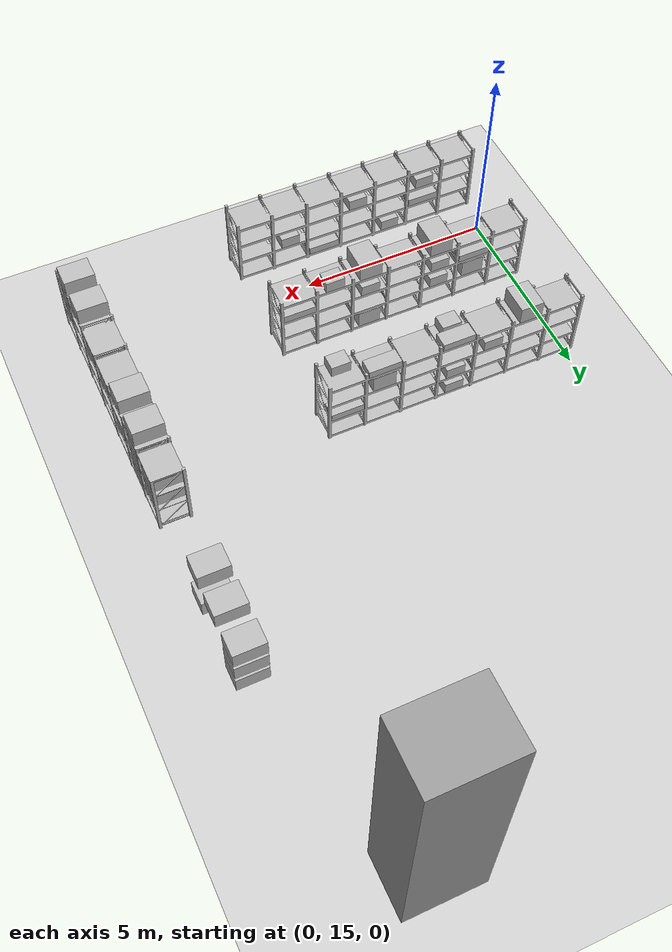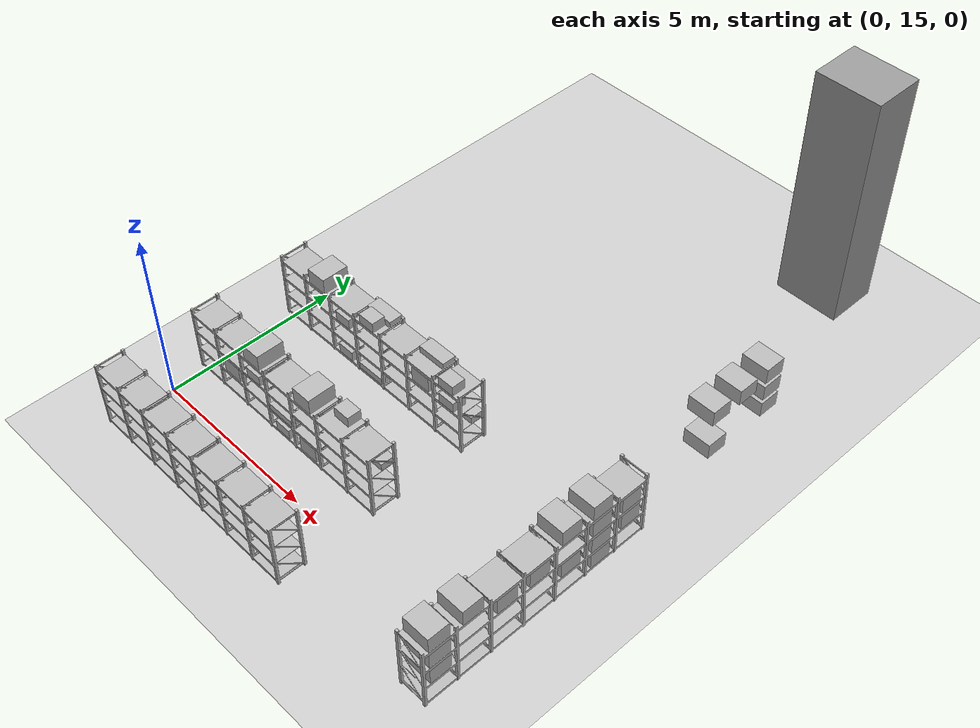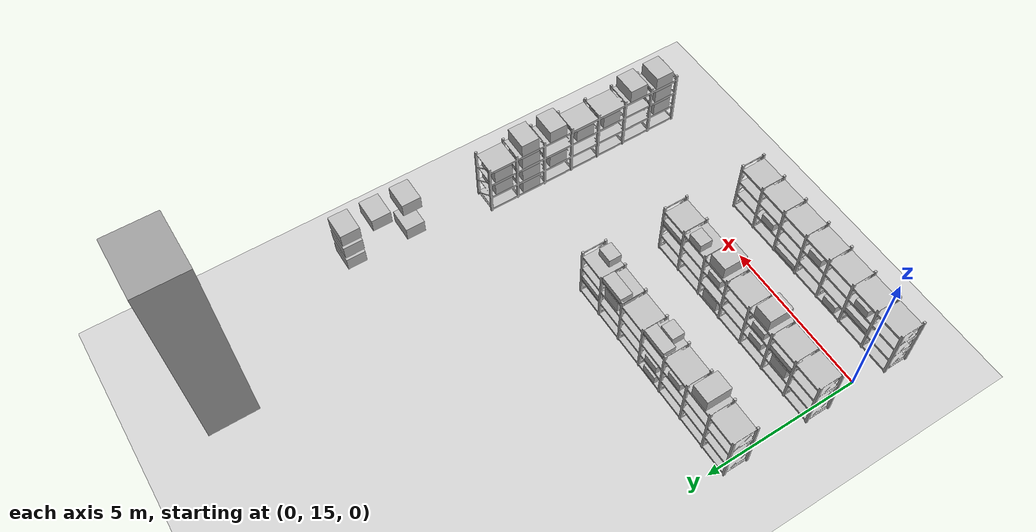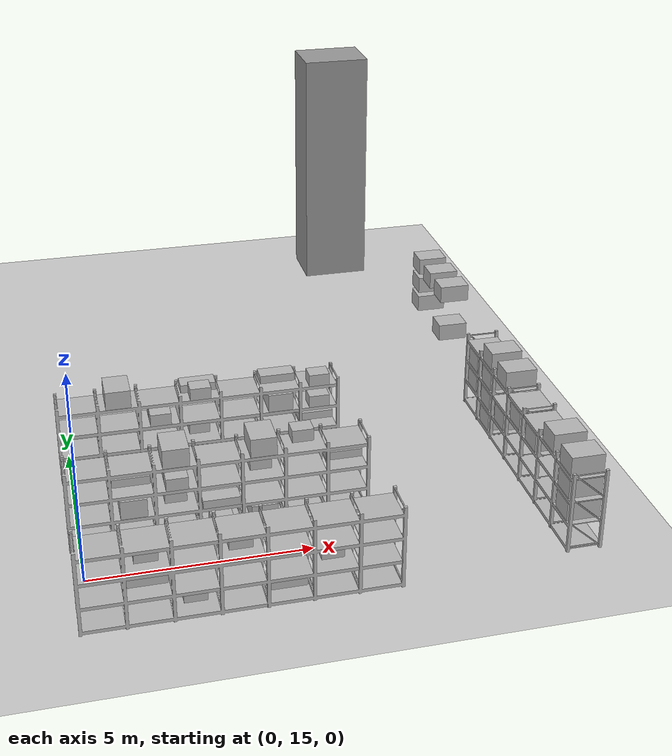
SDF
<sdf version="1.6">
 <world name="default">
  <model name="ground_plane">
   <static>1</static>
   <link name="link">
    <collision name="collision">
     <geometry><plane><normal>0 0 1</normal><size>100 100</size></plane></geometry>
     <surface><friction><ode><mu>100</mu><mu2>50</mu2></ode></friction></surface>
    </collision>
    <visual name="visual">
     <cast_shadows>0</cast_shadows>
     <geometry><plane><normal>0 0 1</normal><size>100 100</size></plane></geometry>
     <material>
      <script><uri>file://media/materials/scripts/gazebo.material</uri><name>Gazebo/Grey</name></script>
     </material>
    </visual>
   </link>
  </model>
  <model name="box_C_087">
   <pose>10.762 24.783 0.907 0 0 3.1416</pose>
   <link name="link">
    <inertial>
     <mass>8.0</mass>
     <inertia><ixx>0.37500</ixx><iyy>0.54060</iyy><izz>0.64560</izz><ixy>0</ixy><ixz>0</ixz><iyz>0</iyz></inertia>
    </inertial>
    <collision name="collision">
     <geometry><box><size>0.78 0.6 0.45</size></box></geometry>
     <surface><friction><ode><mu>1.0</mu><mu2>1.0</mu2></ode></friction></surface>
    </collision>
    <visual name="visual">
     <cast_shadows>0</cast_shadows>
     <geometry><box><size>0.78 0.6 0.45</size></box></geometry>
     <material>
      <script>
       <uri>model://labeled_boxes/materials/scripts</uri>
       <uri>model://labeled_boxes/materials/textures</uri>
       <name>LabeledBox/C-087</name>
      </script>
     </material>
    </visual>
   </link>
  </model>
  <model name="box_C_088">
   <pose>10.762 24.783 1.487 0 0 3.1416</pose>
   <link name="link">
    <inertial>
     <mass>8.0</mass>
     <inertia><ixx>0.37500</ixx><iyy>0.54060</iyy><izz>0.64560</izz><ixy>0</ixy><ixz>0</ixz><iyz>0</iyz></inertia>
    </inertial>
    <collision name="collision">
     <geometry><box><size>0.78 0.6 0.45</size></box></geometry>
     <surface><friction><ode><mu>1.0</mu><mu2>1.0</mu2></ode></friction></surface>
    </collision>
    <visual name="visual">
     <cast_shadows>0</cast_shadows>
     <geometry><box><size>0.78 0.6 0.45</size></box></geometry>
     <material>
      <script>
       <uri>model://labeled_boxes/materials/scripts</uri>
       <uri>model://labeled_boxes/materials/textures</uri>
       <name>LabeledBox/C-088</name>
      </script>
     </material>
    </visual>
   </link>
  </model>
  <model name="box_C_089">
   <pose>10.762 24.783 2.067 0 0 3.1416</pose>
   <link name="link">
    <inertial>
     <mass>8.0</mass>
     <inertia><ixx>0.37500</ixx><iyy>0.54060</iyy><izz>0.64560</izz><ixy>0</ixy><ixz>0</ixz><iyz>0</iyz></inertia>
    </inertial>
    <collision name="collision">
     <geometry><box><size>0.78 0.6 0.45</size></box></geometry>
     <surface><friction><ode><mu>1.0</mu><mu2>1.0</mu2></ode></friction></surface>
    </collision>
    <visual name="visual">
     <cast_shadows>0</cast_shadows>
     <geometry><box><size>0.78 0.6 0.45</size></box></geometry>
     <material>
      <script>
       <uri>model://labeled_boxes/materials/scripts</uri>
       <uri>model://labeled_boxes/materials/textures</uri>
       <name>LabeledBox/C-089</name>
      </script>
     </material>
    </visual>
   </link>
  </model>
  <model name="box_C_090">
   <pose>10.762 23.812 2.067 0 0 3.1416</pose>
   <link name="link">
    <inertial>
     <mass>8.0</mass>
     <inertia><ixx>0.37500</ixx><iyy>0.54060</iyy><izz>0.64560</izz><ixy>0</ixy><ixz>0</ixz><iyz>0</iyz></inertia>
    </inertial>
    <collision name="collision">
     <geometry><box><size>0.78 0.6 0.45</size></box></geometry>
     <surface><friction><ode><mu>1.0</mu><mu2>1.0</mu2></ode></friction></surface>
    </collision>
    <visual name="visual">
     <cast_shadows>0</cast_shadows>
     <geometry><box><size>0.78 0.6 0.45</size></box></geometry>
     <material>
      <script>
       <uri>model://labeled_boxes/materials/scripts</uri>
       <uri>model://labeled_boxes/materials/textures</uri>
       <name>LabeledBox/C-090</name>
      </script>
     </material>
    </visual>
   </link>
  </model>
  <model name="box_C_091">
   <pose>10.762 22.858 0.907 0 0 3.1416</pose>
   <link name="link">
    <inertial>
     <mass>8.0</mass>
     <inertia><ixx>0.37500</ixx><iyy>0.54060</iyy><izz>0.64560</izz><ixy>0</ixy><ixz>0</ixz><iyz>0</iyz></inertia>
    </inertial>
    <collision name="collision">
     <geometry><box><size>0.78 0.6 0.45</size></box></geometry>
     <surface><friction><ode><mu>1.0</mu><mu2>1.0</mu2></ode></friction></surface>
    </collision>
    <visual name="visual">
     <cast_shadows>0</cast_shadows>
     <geometry><box><size>0.78 0.6 0.45</size></box></geometry>
     <material>
      <script>
       <uri>model://labeled_boxes/materials/scripts</uri>
       <uri>model://labeled_boxes/materials/textures</uri>
       <name>LabeledBox/C-091</name>
      </script>
     </material>
    </visual>
   </link>
  </model>
  <model name="box_C_092">
   <pose>10.762 22.858 2.067 0 0 3.1416</pose>
   <link name="link">
    <inertial>
     <mass>8.0</mass>
     <inertia><ixx>0.37500</ixx><iyy>0.54060</iyy><izz>0.64560</izz><ixy>0</ixy><ixz>0</ixz><iyz>0</iyz></inertia>
    </inertial>
    <collision name="collision">
     <geometry><box><size>0.78 0.6 0.45</size></box></geometry>
     <surface><friction><ode><mu>1.0</mu><mu2>1.0</mu2></ode></friction></surface>
    </collision>
    <visual name="visual">
     <cast_shadows>0</cast_shadows>
     <geometry><box><size>0.78 0.6 0.45</size></box></geometry>
     <material>
      <script>
       <uri>model://labeled_boxes/materials/scripts</uri>
       <uri>model://labeled_boxes/materials/textures</uri>
       <name>LabeledBox/C-092</name>
      </script>
     </material>
    </visual>
   </link>
  </model>
  <include>
   <name>rack_C5_1</name>
   <uri>model://warehouse_rack_4lvl_7bay</uri>
   <pose>10.762 16.955 0 0 0 3.1416</pose>
  </include>
  <model name="box_C_093">
   <pose>10.762 19.852 0.907 0 0 3.1416</pose>
   <link name="link">
    <inertial>
     <mass>8.0</mass>
     <inertia><ixx>0.37500</ixx><iyy>0.54060</iyy><izz>0.64560</izz><ixy>0</ixy><ixz>0</ixz><iyz>0</iyz></inertia>
    </inertial>
    <collision name="collision">
     <geometry><box><size>0.78 0.6 0.45</size></box></geometry>
     <surface><friction><ode><mu>1.0</mu><mu2>1.0</mu2></ode></friction></surface>
    </collision>
    <visual name="visual">
     <cast_shadows>0</cast_shadows>
     <geometry><box><size>0.78 0.6 0.45</size></box></geometry>
     <material>
      <script>
       <uri>model://labeled_boxes/materials/scripts</uri>
       <uri>model://labeled_boxes/materials/textures</uri>
       <name>LabeledBox/C-093</name>
      </script>
     </material>
    </visual>
   </link>
  </model>
  <model name="box_C_094">
   <pose>10.762 19.852 1.487 0 0 3.1416</pose>
   <link name="link">
    <inertial>
     <mass>8.0</mass>
     <inertia><ixx>0.37500</ixx><iyy>0.54060</iyy><izz>0.64560</izz><ixy>0</ixy><ixz>0</ixz><iyz>0</iyz></inertia>
    </inertial>
    <collision name="collision">
     <geometry><box><size>0.78 0.6 0.45</size></box></geometry>
     <surface><friction><ode><mu>1.0</mu><mu2>1.0</mu2></ode></friction></surface>
    </collision>
    <visual name="visual">
     <cast_shadows>0</cast_shadows>
     <geometry><box><size>0.78 0.6 0.45</size></box></geometry>
     <material>
      <script>
       <uri>model://labeled_boxes/materials/scripts</uri>
       <uri>model://labeled_boxes/materials/textures</uri>
       <name>LabeledBox/C-094</name>
      </script>
     </material>
    </visual>
   </link>
  </model>
  <model name="box_C_095">
   <pose>10.762 18.898 0.327 0 0 3.1416</pose>
   <link name="link">
    <inertial>
     <mass>8.0</mass>
     <inertia><ixx>0.37500</ixx><iyy>0.54060</iyy><izz>0.64560</izz><ixy>0</ixy><ixz>0</ixz><iyz>0</iyz></inertia>
    </inertial>
    <collision name="collision">
     <geometry><box><size>0.78 0.6 0.45</size></box></geometry>
     <surface><friction><ode><mu>1.0</mu><mu2>1.0</mu2></ode></friction></surface>
    </collision>
    <visual name="visual">
     <cast_shadows>0</cast_shadows>
     <geometry><box><size>0.78 0.6 0.45</size></box></geometry>
     <material>
      <script>
       <uri>model://labeled_boxes/materials/scripts</uri>
       <uri>model://labeled_boxes/materials/textures</uri>
       <name>LabeledBox/C-095</name>
      </script>
     </material>
    </visual>
   </link>
  </model>
  <model name="box_C_096">
   <pose>10.762 18.898 0.907 0 0 3.1416</pose>
   <link name="link">
    <inertial>
     <mass>8.0</mass>
     <inertia><ixx>0.37500</ixx><iyy>0.54060</iyy><izz>0.64560</izz><ixy>0</ixy><ixz>0</ixz><iyz>0</iyz></inertia>
    </inertial>
    <collision name="collision">
     <geometry><box><size>0.78 0.6 0.45</size></box></geometry>
     <surface><friction><ode><mu>1.0</mu><mu2>1.0</mu2></ode></friction></surface>
    </collision>
    <visual name="visual">
     <cast_shadows>0</cast_shadows>
     <geometry><box><size>0.78 0.6 0.45</size></box></geometry>
     <material>
      <script>
       <uri>model://labeled_boxes/materials/scripts</uri>
       <uri>model://labeled_boxes/materials/textures</uri>
       <name>LabeledBox/C-096</name>
      </script>
     </material>
    </visual>
   </link>
  </model>
  <model name="box_C_097">
   <pose>10.762 18.898 1.487 0 0 3.1416</pose>
   <link name="link">
    <inertial>
     <mass>8.0</mass>
     <inertia><ixx>0.37500</ixx><iyy>0.54060</iyy><izz>0.64560</izz><ixy>0</ixy><ixz>0</ixz><iyz>0</iyz></inertia>
    </inertial>
    <collision name="collision">
     <geometry><box><size>0.78 0.6 0.45</size></box></geometry>
     <surface><friction><ode><mu>1.0</mu><mu2>1.0</mu2></ode></friction></surface>
    </collision>
    <visual name="visual">
     <cast_shadows>0</cast_shadows>
     <geometry><box><size>0.78 0.6 0.45</size></box></geometry>
     <material>
      <script>
       <uri>model://labeled_boxes/materials/scripts</uri>
       <uri>model://labeled_boxes/materials/textures</uri>
       <name>LabeledBox/C-097</name>
      </script>
     </material>
    </visual>
   </link>
  </model>
  <model name="box_C_098">
   <pose>10.762 18.898 2.067 0 0 3.1416</pose>
   <link name="link">
    <inertial>
     <mass>8.0</mass>
     <inertia><ixx>0.37500</ixx><iyy>0.54060</iyy><izz>0.64560</izz><ixy>0</ixy><ixz>0</ixz><iyz>0</iyz></inertia>
    </inertial>
    <collision name="collision">
     <geometry><box><size>0.78 0.6 0.45</size></box></geometry>
     <surface><friction><ode><mu>1.0</mu><mu2>1.0</mu2></ode></friction></surface>
    </collision>
    <visual name="visual">
     <cast_shadows>0</cast_shadows>
     <geometry><box><size>0.78 0.6 0.45</size></box></geometry>
     <material>
      <script>
       <uri>model://labeled_boxes/materials/scripts</uri>
       <uri>model://labeled_boxes/materials/textures</uri>
       <name>LabeledBox/C-098</name>
      </script>
     </material>
    </visual>
   </link>
  </model>
  <model name="box_C_099">
   <pose>10.762 17.926 0.907 0 0 3.1416</pose>
   <link name="link">
    <inertial>
     <mass>8.0</mass>
     <inertia><ixx>0.37500</ixx><iyy>0.54060</iyy><izz>0.64560</izz><ixy>0</ixy><ixz>0</ixz><iyz>0</iyz></inertia>
    </inertial>
    <collision name="collision">
     <geometry><box><size>0.78 0.6 0.45</size></box></geometry>
     <surface><friction><ode><mu>1.0</mu><mu2>1.0</mu2></ode></friction></surface>
    </collision>
    <visual name="visual">
     <cast_shadows>0</cast_shadows>
     <geometry><box><size>0.78 0.6 0.45</size></box></geometry>
     <material>
      <script>
       <uri>model://labeled_boxes/materials/scripts</uri>
       <uri>model://labeled_boxes/materials/textures</uri>
       <name>LabeledBox/C-099</name>
      </script>
     </material>
    </visual>
   </link>
  </model>
  <model name="box_C_100">
   <pose>10.762 17.926 2.067 0 0 3.1416</pose>
   <link name="link">
    <inertial>
     <mass>8.0</mass>
     <inertia><ixx>0.37500</ixx><iyy>0.54060</iyy><izz>0.64560</izz><ixy>0</ixy><ixz>0</ixz><iyz>0</iyz></inertia>
    </inertial>
    <collision name="collision">
     <geometry><box><size>0.78 0.6 0.45</size></box></geometry>
     <surface><friction><ode><mu>1.0</mu><mu2>1.0</mu2></ode></friction></surface>
    </collision>
    <visual name="visual">
     <cast_shadows>0</cast_shadows>
     <geometry><box><size>0.78 0.6 0.45</size></box></geometry>
     <material>
      <script>
       <uri>model://labeled_boxes/materials/scripts</uri>
       <uri>model://labeled_boxes/materials/textures</uri>
       <name>LabeledBox/C-100</name>
      </script>
     </material>
    </visual>
   </link>
  </model>
  <model name="box_C_101">
   <pose>10.762 16.955 1.487 0 0 3.1416</pose>
   <link name="link">
    <inertial>
     <mass>8.0</mass>
     <inertia><ixx>0.37500</ixx><iyy>0.54060</iyy><izz>0.64560</izz><ixy>0</ixy><ixz>0</ixz><iyz>0</iyz></inertia>
    </inertial>
    <collision name="collision">
     <geometry><box><size>0.78 0.6 0.45</size></box></geometry>
     <surface><friction><ode><mu>1.0</mu><mu2>1.0</mu2></ode></friction></surface>
    </collision>
    <visual name="visual">
     <cast_shadows>0</cast_shadows>
     <geometry><box><size>0.78 0.6 0.45</size></box></geometry>
     <material>
      <script>
       <uri>model://labeled_boxes/materials/scripts</uri>
       <uri>model://labeled_boxes/materials/textures</uri>
       <name>LabeledBox/C-101</name>
      </script>
     </material>
    </visual>
   </link>
  </model>
  <model name="box_C_102">
   <pose>10.762 15.983 1.487 0 0 3.1416</pose>
   <link name="link">
    <inertial>
     <mass>8.0</mass>
     <inertia><ixx>0.37500</ixx><iyy>0.54060</iyy><izz>0.64560</izz><ixy>0</ixy><ixz>0</ixz><iyz>0</iyz></inertia>
    </inertial>
    <collision name="collision">
     <geometry><box><size>0.78 0.6 0.45</size></box></geometry>
     <surface><friction><ode><mu>1.0</mu><mu2>1.0</mu2></ode></friction></surface>
    </collision>
    <visual name="visual">
     <cast_shadows>0</cast_shadows>
     <geometry><box><size>0.78 0.6 0.45</size></box></geometry>
     <material>
      <script>
       <uri>model://labeled_boxes/materials/scripts</uri>
       <uri>model://labeled_boxes/materials/textures</uri>
       <name>LabeledBox/C-102</name>
      </script>
     </material>
    </visual>
   </link>
  </model>
  <model name="box_C_103">
   <pose>10.762 15.012 2.067 0 0 3.1416</pose>
   <link name="link">
    <inertial>
     <mass>8.0</mass>
     <inertia><ixx>0.37500</ixx><iyy>0.54060</iyy><izz>0.64560</izz><ixy>0</ixy><ixz>0</ixz><iyz>0</iyz></inertia>
    </inertial>
    <collision name="collision">
     <geometry><box><size>0.78 0.6 0.45</size></box></geometry>
     <surface><friction><ode><mu>1.0</mu><mu2>1.0</mu2></ode></friction></surface>
    </collision>
    <visual name="visual">
     <cast_shadows>0</cast_shadows>
     <geometry><box><size>0.78 0.6 0.45</size></box></geometry>
     <material>
      <script>
       <uri>model://labeled_boxes/materials/scripts</uri>
       <uri>model://labeled_boxes/materials/textures</uri>
       <name>LabeledBox/C-103</name>
      </script>
     </material>
    </visual>
   </link>
  </model>
  <model name="box_C_104">
   <pose>10.762 14.058 0.907 0 0 3.1416</pose>
   <link name="link">
    <inertial>
     <mass>8.0</mass>
     <inertia><ixx>0.37500</ixx><iyy>0.54060</iyy><izz>0.64560</izz><ixy>0</ixy><ixz>0</ixz><iyz>0</iyz></inertia>
    </inertial>
    <collision name="collision">
     <geometry><box><size>0.78 0.6 0.45</size></box></geometry>
     <surface><friction><ode><mu>1.0</mu><mu2>1.0</mu2></ode></friction></surface>
    </collision>
    <visual name="visual">
     <cast_shadows>0</cast_shadows>
     <geometry><box><size>0.78 0.6 0.45</size></box></geometry>
     <material>
      <script>
       <uri>model://labeled_boxes/materials/scripts</uri>
       <uri>model://labeled_boxes/materials/textures</uri>
       <name>LabeledBox/C-104</name>
      </script>
     </material>
    </visual>
   </link>
  </model>
  <model name="box_C_105">
   <pose>10.762 14.058 1.487 0 0 3.1416</pose>
   <link name="link">
    <inertial>
     <mass>8.0</mass>
     <inertia><ixx>0.37500</ixx><iyy>0.54060</iyy><izz>0.64560</izz><ixy>0</ixy><ixz>0</ixz><iyz>0</iyz></inertia>
    </inertial>
    <collision name="collision">
     <geometry><box><size>0.78 0.6 0.45</size></box></geometry>
     <surface><friction><ode><mu>1.0</mu><mu2>1.0</mu2></ode></friction></surface>
    </collision>
    <visual name="visual">
     <cast_shadows>0</cast_shadows>
     <geometry><box><size>0.78 0.6 0.45</size></box></geometry>
     <material>
      <script>
       <uri>model://labeled_boxes/materials/scripts</uri>
       <uri>model://labeled_boxes/materials/textures</uri>
       <name>LabeledBox/C-105</name>
      </script>
     </material>
    </visual>
   </link>
  </model>
  <model name="box_C_106">
   <pose>10.762 14.058 2.067 0 0 3.1416</pose>
   <link name="link">
    <inertial>
     <mass>8.0</mass>
     <inertia><ixx>0.37500</ixx><iyy>0.54060</iyy><izz>0.64560</izz><ixy>0</ixy><ixz>0</ixz><iyz>0</iyz></inertia>
    </inertial>
    <collision name="collision">
     <geometry><box><size>0.78 0.6 0.45</size></box></geometry>
     <surface><friction><ode><mu>1.0</mu><mu2>1.0</mu2></ode></friction></surface>
    </collision>
    <visual name="visual">
     <cast_shadows>0</cast_shadows>
     <geometry><box><size>0.78 0.6 0.45</size></box></geometry>
     <material>
      <script>
       <uri>model://labeled_boxes/materials/scripts</uri>
       <uri>model://labeled_boxes/materials/textures</uri>
       <name>LabeledBox/C-106</name>
      </script>
     </material>
    </visual>
   </link>
  </model>
  <include>
   <name>rack_D2_1</name>
   <uri>model://warehouse_rack_4lvl_7bay</uri>
   <pose>3.1599 19.255 0 0 0 -1.5708</pose>
  </include>
  <model name="box_D_032">
   <pose>1.217 19.255 2.067 0 0 -1.5708</pose>
   <link name="link">
    <inertial>
     <mass>8.0</mass>
     <inertia><ixx>0.37500</ixx><iyy>0.54060</iyy><izz>0.64560</izz><ixy>0</ixy><ixz>0</ixz><iyz>0</iyz></inertia>
    </inertial>
    <collision name="collision">
     <geometry><box><size>0.78 0.6 0.45</size></box></geometry>
     <surface><friction><ode><mu>1.0</mu><mu2>1.0</mu2></ode></friction></surface>
    </collision>
    <visual name="visual">
     <cast_shadows>0</cast_shadows>
     <geometry><box><size>0.78 0.6 0.45</size></box></geometry>
     <material>
      <script>
       <uri>model://labeled_boxes/materials/scripts</uri>
       <uri>model://labeled_boxes/materials/textures</uri>
       <name>LabeledBox/D-032</name>
      </script>
     </material>
    </visual>
   </link>
  </model>
  <model name="box_D_033">
   <pose>2.1885 19.05 0.252 0 0 -1.5708</pose>
   <link name="link">
    <inertial>
     <mass>2.0</mass>
     <inertia><ixx>0.05667</ixx><iyy>0.04167</iyy><izz>0.06833</izz><ixy>0</ixy><ixz>0</ixz><iyz>0</iyz></inertia>
    </inertial>
    <collision name="collision">
     <geometry><box><size>0.4 0.5 0.3</size></box></geometry>
     <surface><friction><ode><mu>1.0</mu><mu2>1.0</mu2></ode></friction></surface>
    </collision>
    <visual name="visual">
     <cast_shadows>0</cast_shadows>
     <geometry><box><size>0.4 0.5 0.3</size></box></geometry>
     <material>
      <script>
       <uri>model://labeled_boxes/materials/scripts</uri>
       <uri>model://labeled_boxes/materials/textures</uri>
       <name>LabeledBox/D-033</name>
      </script>
     </material>
    </visual>
   </link>
  </model>
  <model name="box_D_034">
   <pose>2.1885 19.46 1.412 0 0 -1.5708</pose>
   <link name="link">
    <inertial>
     <mass>2.0</mass>
     <inertia><ixx>0.05667</ixx><iyy>0.04167</iyy><izz>0.06833</izz><ixy>0</ixy><ixz>0</ixz><iyz>0</iyz></inertia>
    </inertial>
    <collision name="collision">
     <geometry><box><size>0.4 0.5 0.3</size></box></geometry>
     <surface><friction><ode><mu>1.0</mu><mu2>1.0</mu2></ode></friction></surface>
    </collision>
    <visual name="visual">
     <cast_shadows>0</cast_shadows>
     <geometry><box><size>0.4 0.5 0.3</size></box></geometry>
     <material>
      <script>
       <uri>model://labeled_boxes/materials/scripts</uri>
       <uri>model://labeled_boxes/materials/textures</uri>
       <name>LabeledBox/D-034</name>
      </script>
     </material>
    </visual>
   </link>
  </model>
  <model name="box_D_035">
   <pose>2.1885 19.05 1.412 0 0 -1.5708</pose>
   <link name="link">
    <inertial>
     <mass>2.0</mass>
     <inertia><ixx>0.05667</ixx><iyy>0.04167</iyy><izz>0.06833</izz><ixy>0</ixy><ixz>0</ixz><iyz>0</iyz></inertia>
    </inertial>
    <collision name="collision">
     <geometry><box><size>0.4 0.5 0.3</size></box></geometry>
     <surface><friction><ode><mu>1.0</mu><mu2>1.0</mu2></ode></friction></surface>
    </collision>
    <visual name="visual">
     <cast_shadows>0</cast_shadows>
     <geometry><box><size>0.4 0.5 0.3</size></box></geometry>
     <material>
      <script>
       <uri>model://labeled_boxes/materials/scripts</uri>
       <uri>model://labeled_boxes/materials/textures</uri>
       <name>LabeledBox/D-035</name>
      </script>
     </material>
    </visual>
   </link>
  </model>
  <model name="box_D_036">
   <pose>3.1599 19.46 0.252 0 0 -1.5708</pose>
   <link name="link">
    <inertial>
     <mass>2.0</mass>
     <inertia><ixx>0.05667</ixx><iyy>0.04167</iyy><izz>0.06833</izz><ixy>0</ixy><ixz>0</ixz><iyz>0</iyz></inertia>
    </inertial>
    <collision name="collision">
     <geometry><box><size>0.4 0.5 0.3</size></box></geometry>
     <surface><friction><ode><mu>1.0</mu><mu2>1.0</mu2></ode></friction></surface>
    </collision>
    <visual name="visual">
     <cast_shadows>0</cast_shadows>
     <geometry><box><size>0.4 0.5 0.3</size></box></geometry>
     <material>
      <script>
       <uri>model://labeled_boxes/materials/scripts</uri>
       <uri>model://labeled_boxes/materials/textures</uri>
       <name>LabeledBox/D-036</name>
      </script>
     </material>
    </visual>
   </link>
  </model>
  <model name="box_D_037">
   <pose>3.1599 19.05 0.202 0 0 -1.5708</pose>
   <link name="link">
    <inertial>
     <mass>4.0</mass>
     <inertia><ixx>0.25417</ixx><iyy>0.06667</iyy><izz>0.29417</izz><ixy>0</ixy><ixz>0</ixz><iyz>0</iyz></inertia>
    </inertial>
    <collision name="collision">
     <geometry><box><size>0.4 0.85 0.2</size></box></geometry>
     <surface><friction><ode><mu>1.0</mu><mu2>1.0</mu2></ode></friction></surface>
    </collision>
    <visual name="visual">
     <cast_shadows>0</cast_shadows>
     <geometry><box><size>0.4 0.85 0.2</size></box></geometry>
     <material>
      <script>
       <uri>model://labeled_boxes/materials/scripts</uri>
       <uri>model://labeled_boxes/materials/textures</uri>
       <name>LabeledBox/D-037</name>
      </script>
     </material>
    </visual>
   </link>
  </model>
  <model name="box_D_038">
   <pose>3.1599 19.46 0.832 0 0 -1.5708</pose>
   <link name="link">
    <inertial>
     <mass>2.0</mass>
     <inertia><ixx>0.05667</ixx><iyy>0.04167</iyy><izz>0.06833</izz><ixy>0</ixy><ixz>0</ixz><iyz>0</iyz></inertia>
    </inertial>
    <collision name="collision">
     <geometry><box><size>0.4 0.5 0.3</size></box></geometry>
     <surface><friction><ode><mu>1.0</mu><mu2>1.0</mu2></ode></friction></surface>
    </collision>
    <visual name="visual">
     <cast_shadows>0</cast_shadows>
     <geometry><box><size>0.4 0.5 0.3</size></box></geometry>
     <material>
      <script>
       <uri>model://labeled_boxes/materials/scripts</uri>
       <uri>model://labeled_boxes/materials/textures</uri>
       <name>LabeledBox/D-038</name>
      </script>
     </material>
    </visual>
   </link>
  </model>
  <model name="box_D_039">
   <pose>3.1599 19.46 1.942 0 0 -1.5708</pose>
   <link name="link">
    <inertial>
     <mass>4.0</mass>
     <inertia><ixx>0.25417</ixx><iyy>0.06667</iyy><izz>0.29417</izz><ixy>0</ixy><ixz>0</ixz><iyz>0</iyz></inertia>
    </inertial>
    <collision name="collision">
     <geometry><box><size>0.4 0.85 0.2</size></box></geometry>
     <surface><friction><ode><mu>1.0</mu><mu2>1.0</mu2></ode></friction></surface>
    </collision>
    <visual name="visual">
     <cast_shadows>0</cast_shadows>
     <geometry><box><size>0.4 0.85 0.2</size></box></geometry>
     <material>
      <script>
       <uri>model://labeled_boxes/materials/scripts</uri>
       <uri>model://labeled_boxes/materials/textures</uri>
       <name>LabeledBox/D-039</name>
      </script>
     </material>
    </visual>
   </link>
  </model>
  <model name="box_D_040">
   <pose>3.1599 19.05 1.992 0 0 -1.5708</pose>
   <link name="link">
    <inertial>
     <mass>2.0</mass>
     <inertia><ixx>0.05667</ixx><iyy>0.04167</iyy><izz>0.06833</izz><ixy>0</ixy><ixz>0</ixz><iyz>0</iyz></inertia>
    </inertial>
    <collision name="collision">
     <geometry><box><size>0.4 0.5 0.3</size></box></geometry>
     <surface><friction><ode><mu>1.0</mu><mu2>1.0</mu2></ode></friction></surface>
    </collision>
    <visual name="visual">
     <cast_shadows>0</cast_shadows>
     <geometry><box><size>0.4 0.5 0.3</size></box></geometry>
     <material>
      <script>
       <uri>model://labeled_boxes/materials/scripts</uri>
       <uri>model://labeled_boxes/materials/textures</uri>
       <name>LabeledBox/D-040</name>
      </script>
     </material>
    </visual>
   </link>
  </model>
  <model name="box_D_041">
   <pose>5.1028 19.255 1.487 0 0 -1.5708</pose>
   <link name="link">
    <inertial>
     <mass>8.0</mass>
     <inertia><ixx>0.37500</ixx><iyy>0.54060</iyy><izz>0.64560</izz><ixy>0</ixy><ixz>0</ixz><iyz>0</iyz></inertia>
    </inertial>
    <collision name="collision">
     <geometry><box><size>0.78 0.6 0.45</size></box></geometry>
     <surface><friction><ode><mu>1.0</mu><mu2>1.0</mu2></ode></friction></surface>
    </collision>
    <visual name="visual">
     <cast_shadows>0</cast_shadows>
     <geometry><box><size>0.78 0.6 0.45</size></box></geometry>
     <material>
      <script>
       <uri>model://labeled_boxes/materials/scripts</uri>
       <uri>model://labeled_boxes/materials/textures</uri>
       <name>LabeledBox/D-041</name>
      </script>
     </material>
    </visual>
   </link>
  </model>
  <model name="box_D_042">
   <pose>5.1028 19.46 1.942 0 0 -1.5708</pose>
   <link name="link">
    <inertial>
     <mass>4.0</mass>
     <inertia><ixx>0.25417</ixx><iyy>0.06667</iyy><izz>0.29417</izz><ixy>0</ixy><ixz>0</ixz><iyz>0</iyz></inertia>
    </inertial>
    <collision name="collision">
     <geometry><box><size>0.4 0.85 0.2</size></box></geometry>
     <surface><friction><ode><mu>1.0</mu><mu2>1.0</mu2></ode></friction></surface>
    </collision>
    <visual name="visual">
     <cast_shadows>0</cast_shadows>
     <geometry><box><size>0.4 0.85 0.2</size></box></geometry>
     <material>
      <script>
       <uri>model://labeled_boxes/materials/scripts</uri>
       <uri>model://labeled_boxes/materials/textures</uri>
       <name>LabeledBox/D-042</name>
      </script>
     </material>
    </visual>
   </link>
  </model>
  <model name="box_D_043">
   <pose>6.0567 19.46 0.782 0 0 -1.5708</pose>
   <link name="link">
    <inertial>
     <mass>4.0</mass>
     <inertia><ixx>0.25417</ixx><iyy>0.06667</iyy><izz>0.29417</izz><ixy>0</ixy><ixz>0</ixz><iyz>0</iyz></inertia>
    </inertial>
    <collision name="collision">
     <geometry><box><size>0.4 0.85 0.2</size></box></geometry>
     <surface><friction><ode><mu>1.0</mu><mu2>1.0</mu2></ode></friction></surface>
    </collision>
    <visual name="visual">
     <cast_shadows>0</cast_shadows>
     <geometry><box><size>0.4 0.85 0.2</size></box></geometry>
     <material>
      <script>
       <uri>model://labeled_boxes/materials/scripts</uri>
       <uri>model://labeled_boxes/materials/textures</uri>
       <name>LabeledBox/D-043</name>
      </script>
     </material>
    </visual>
   </link>
  </model>
  <model name="box_D_044">
   <pose>6.0567 19.05 1.412 0 0 -1.5708</pose>
   <link name="link">
    <inertial>
     <mass>2.0</mass>
     <inertia><ixx>0.05667</ixx><iyy>0.04167</iyy><izz>0.06833</izz><ixy>0</ixy><ixz>0</ixz><iyz>0</iyz></inertia>
    </inertial>
    <collision name="collision">
     <geometry><box><size>0.4 0.5 0.3</size></box></geometry>
     <surface><friction><ode><mu>1.0</mu><mu2>1.0</mu2></ode></friction></surface>
    </collision>
    <visual name="visual">
     <cast_shadows>0</cast_shadows>
     <geometry><box><size>0.4 0.5 0.3</size></box></geometry>
     <material>
      <script>
       <uri>model://labeled_boxes/materials/scripts</uri>
       <uri>model://labeled_boxes/materials/textures</uri>
       <name>LabeledBox/D-044</name>
      </script>
     </material>
    </visual>
   </link>
  </model>
  <model name="box_D_045">
   <pose>6.0567 19.05 1.992 0 0 -1.5708</pose>
   <link name="link">
    <inertial>
     <mass>2.0</mass>
     <inertia><ixx>0.05667</ixx><iyy>0.04167</iyy><izz>0.06833</izz><ixy>0</ixy><ixz>0</ixz><iyz>0</iyz></inertia>
    </inertial>
    <collision name="collision">
     <geometry><box><size>0.4 0.5 0.3</size></box></geometry>
     <surface><friction><ode><mu>1.0</mu><mu2>1.0</mu2></ode></friction></surface>
    </collision>
    <visual name="visual">
     <cast_shadows>0</cast_shadows>
     <geometry><box><size>0.4 0.5 0.3</size></box></geometry>
     <material>
      <script>
       <uri>model://labeled_boxes/materials/scripts</uri>
       <uri>model://labeled_boxes/materials/textures</uri>
       <name>LabeledBox/D-045</name>
      </script>
     </material>
    </visual>
   </link>
  </model>
  <include>
   <name>rack_D3_1</name>
   <uri>model://warehouse_rack_4lvl_7bay</uri>
   <pose>3.1599 16.455 0 0 0 -1.5708</pose>
  </include>
  <model name="box_D_054">
   <pose>1.217 16.455 0.907 0 0 -1.5708</pose>
   <link name="link">
    <inertial>
     <mass>8.0</mass>
     <inertia><ixx>0.37500</ixx><iyy>0.54060</iyy><izz>0.64560</izz><ixy>0</ixy><ixz>0</ixz><iyz>0</iyz></inertia>
    </inertial>
    <collision name="collision">
     <geometry><box><size>0.78 0.6 0.45</size></box></geometry>
     <surface><friction><ode><mu>1.0</mu><mu2>1.0</mu2></ode></friction></surface>
    </collision>
    <visual name="visual">
     <cast_shadows>0</cast_shadows>
     <geometry><box><size>0.78 0.6 0.45</size></box></geometry>
     <material>
      <script>
       <uri>model://labeled_boxes/materials/scripts</uri>
       <uri>model://labeled_boxes/materials/textures</uri>
       <name>LabeledBox/D-054</name>
      </script>
     </material>
    </visual>
   </link>
  </model>
  <model name="box_D_055">
   <pose>1.217 16.66 1.362 0 0 -1.5708</pose>
   <link name="link">
    <inertial>
     <mass>4.0</mass>
     <inertia><ixx>0.25417</ixx><iyy>0.06667</iyy><izz>0.29417</izz><ixy>0</ixy><ixz>0</ixz><iyz>0</iyz></inertia>
    </inertial>
    <collision name="collision">
     <geometry><box><size>0.4 0.85 0.2</size></box></geometry>
     <surface><friction><ode><mu>1.0</mu><mu2>1.0</mu2></ode></friction></surface>
    </collision>
    <visual name="visual">
     <cast_shadows>0</cast_shadows>
     <geometry><box><size>0.4 0.85 0.2</size></box></geometry>
     <material>
      <script>
       <uri>model://labeled_boxes/materials/scripts</uri>
       <uri>model://labeled_boxes/materials/textures</uri>
       <name>LabeledBox/D-055</name>
      </script>
     </material>
    </visual>
   </link>
  </model>
  <model name="box_D_056">
   <pose>2.1885 16.66 0.832 0 0 -1.5708</pose>
   <link name="link">
    <inertial>
     <mass>2.0</mass>
     <inertia><ixx>0.05667</ixx><iyy>0.04167</iyy><izz>0.06833</izz><ixy>0</ixy><ixz>0</ixz><iyz>0</iyz></inertia>
    </inertial>
    <collision name="collision">
     <geometry><box><size>0.4 0.5 0.3</size></box></geometry>
     <surface><friction><ode><mu>1.0</mu><mu2>1.0</mu2></ode></friction></surface>
    </collision>
    <visual name="visual">
     <cast_shadows>0</cast_shadows>
     <geometry><box><size>0.4 0.5 0.3</size></box></geometry>
     <material>
      <script>
       <uri>model://labeled_boxes/materials/scripts</uri>
       <uri>model://labeled_boxes/materials/textures</uri>
       <name>LabeledBox/D-056</name>
      </script>
     </material>
    </visual>
   </link>
  </model>
  <model name="box_D_057">
   <pose>2.1885 16.66 1.412 0 0 -1.5708</pose>
   <link name="link">
    <inertial>
     <mass>2.0</mass>
     <inertia><ixx>0.05667</ixx><iyy>0.04167</iyy><izz>0.06833</izz><ixy>0</ixy><ixz>0</ixz><iyz>0</iyz></inertia>
    </inertial>
    <collision name="collision">
     <geometry><box><size>0.4 0.5 0.3</size></box></geometry>
     <surface><friction><ode><mu>1.0</mu><mu2>1.0</mu2></ode></friction></surface>
    </collision>
    <visual name="visual">
     <cast_shadows>0</cast_shadows>
     <geometry><box><size>0.4 0.5 0.3</size></box></geometry>
     <material>
      <script>
       <uri>model://labeled_boxes/materials/scripts</uri>
       <uri>model://labeled_boxes/materials/textures</uri>
       <name>LabeledBox/D-057</name>
      </script>
     </material>
    </visual>
   </link>
  </model>
  <model name="box_D_058">
   <pose>2.1885 16.25 1.412 0 0 -1.5708</pose>
   <link name="link">
    <inertial>
     <mass>2.0</mass>
     <inertia><ixx>0.05667</ixx><iyy>0.04167</iyy><izz>0.06833</izz><ixy>0</ixy><ixz>0</ixz><iyz>0</iyz></inertia>
    </inertial>
    <collision name="collision">
     <geometry><box><size>0.4 0.5 0.3</size></box></geometry>
     <surface><friction><ode><mu>1.0</mu><mu2>1.0</mu2></ode></friction></surface>
    </collision>
    <visual name="visual">
     <cast_shadows>0</cast_shadows>
     <geometry><box><size>0.4 0.5 0.3</size></box></geometry>
     <material>
      <script>
       <uri>model://labeled_boxes/materials/scripts</uri>
       <uri>model://labeled_boxes/materials/textures</uri>
       <name>LabeledBox/D-058</name>
      </script>
     </material>
    </visual>
   </link>
  </model>
  <model name="box_D_059">
   <pose>2.1885 16.455 2.067 0 0 -1.5708</pose>
   <link name="link">
    <inertial>
     <mass>8.0</mass>
     <inertia><ixx>0.37500</ixx><iyy>0.54060</iyy><izz>0.64560</izz><ixy>0</ixy><ixz>0</ixz><iyz>0</iyz></inertia>
    </inertial>
    <collision name="collision">
     <geometry><box><size>0.78 0.6 0.45</size></box></geometry>
     <surface><friction><ode><mu>1.0</mu><mu2>1.0</mu2></ode></friction></surface>
    </collision>
    <visual name="visual">
     <cast_shadows>0</cast_shadows>
     <geometry><box><size>0.78 0.6 0.45</size></box></geometry>
     <material>
      <script>
       <uri>model://labeled_boxes/materials/scripts</uri>
       <uri>model://labeled_boxes/materials/textures</uri>
       <name>LabeledBox/D-059</name>
      </script>
     </material>
    </visual>
   </link>
  </model>
  <model name="box_D_060">
   <pose>3.1599 16.25 0.252 0 0 -1.5708</pose>
   <link name="link">
    <inertial>
     <mass>2.0</mass>
     <inertia><ixx>0.05667</ixx><iyy>0.04167</iyy><izz>0.06833</izz><ixy>0</ixy><ixz>0</ixz><iyz>0</iyz></inertia>
    </inertial>
    <collision name="collision">
     <geometry><box><size>0.4 0.5 0.3</size></box></geometry>
     <surface><friction><ode><mu>1.0</mu><mu2>1.0</mu2></ode></friction></surface>
    </collision>
    <visual name="visual">
     <cast_shadows>0</cast_shadows>
     <geometry><box><size>0.4 0.5 0.3</size></box></geometry>
     <material>
      <script>
       <uri>model://labeled_boxes/materials/scripts</uri>
       <uri>model://labeled_boxes/materials/textures</uri>
       <name>LabeledBox/D-060</name>
      </script>
     </material>
    </visual>
   </link>
  </model>
  <model name="box_D_061">
   <pose>3.1599 16.25 0.782 0 0 -1.5708</pose>
   <link name="link">
    <inertial>
     <mass>4.0</mass>
     <inertia><ixx>0.25417</ixx><iyy>0.06667</iyy><izz>0.29417</izz><ixy>0</ixy><ixz>0</ixz><iyz>0</iyz></inertia>
    </inertial>
    <collision name="collision">
     <geometry><box><size>0.4 0.85 0.2</size></box></geometry>
     <surface><friction><ode><mu>1.0</mu><mu2>1.0</mu2></ode></friction></surface>
    </collision>
    <visual name="visual">
     <cast_shadows>0</cast_shadows>
     <geometry><box><size>0.4 0.85 0.2</size></box></geometry>
     <material>
      <script>
       <uri>model://labeled_boxes/materials/scripts</uri>
       <uri>model://labeled_boxes/materials/textures</uri>
       <name>LabeledBox/D-061</name>
      </script>
     </material>
    </visual>
   </link>
  </model>
  <model name="box_D_062">
   <pose>4.1313 16.455 0.327 0 0 -1.5708</pose>
   <link name="link">
    <inertial>
     <mass>8.0</mass>
     <inertia><ixx>0.37500</ixx><iyy>0.54060</iyy><izz>0.64560</izz><ixy>0</ixy><ixz>0</ixz><iyz>0</iyz></inertia>
    </inertial>
    <collision name="collision">
     <geometry><box><size>0.78 0.6 0.45</size></box></geometry>
     <surface><friction><ode><mu>1.0</mu><mu2>1.0</mu2></ode></friction></surface>
    </collision>
    <visual name="visual">
     <cast_shadows>0</cast_shadows>
     <geometry><box><size>0.78 0.6 0.45</size></box></geometry>
     <material>
      <script>
       <uri>model://labeled_boxes/materials/scripts</uri>
       <uri>model://labeled_boxes/materials/textures</uri>
       <name>LabeledBox/D-062</name>
      </script>
     </material>
    </visual>
   </link>
  </model>
  <model name="box_D_063">
   <pose>4.1313 16.66 1.412 0 0 -1.5708</pose>
   <link name="link">
    <inertial>
     <mass>2.0</mass>
     <inertia><ixx>0.05667</ixx><iyy>0.04167</iyy><izz>0.06833</izz><ixy>0</ixy><ixz>0</ixz><iyz>0</iyz></inertia>
    </inertial>
    <collision name="collision">
     <geometry><box><size>0.4 0.5 0.3</size></box></geometry>
     <surface><friction><ode><mu>1.0</mu><mu2>1.0</mu2></ode></friction></surface>
    </collision>
    <visual name="visual">
     <cast_shadows>0</cast_shadows>
     <geometry><box><size>0.4 0.5 0.3</size></box></geometry>
     <material>
      <script>
       <uri>model://labeled_boxes/materials/scripts</uri>
       <uri>model://labeled_boxes/materials/textures</uri>
       <name>LabeledBox/D-063</name>
      </script>
     </material>
    </visual>
   </link>
  </model>
  <model name="box_D_064">
   <pose>4.1313 16.455 2.067 0 0 -1.5708</pose>
   <link name="link">
    <inertial>
     <mass>8.0</mass>
     <inertia><ixx>0.37500</ixx><iyy>0.54060</iyy><izz>0.64560</izz><ixy>0</ixy><ixz>0</ixz><iyz>0</iyz></inertia>
    </inertial>
    <collision name="collision">
     <geometry><box><size>0.78 0.6 0.45</size></box></geometry>
     <surface><friction><ode><mu>1.0</mu><mu2>1.0</mu2></ode></friction></surface>
    </collision>
    <visual name="visual">
     <cast_shadows>0</cast_shadows>
     <geometry><box><size>0.78 0.6 0.45</size></box></geometry>
     <material>
      <script>
       <uri>model://labeled_boxes/materials/scripts</uri>
       <uri>model://labeled_boxes/materials/textures</uri>
       <name>LabeledBox/D-064</name>
      </script>
     </material>
    </visual>
   </link>
  </model>
  <model name="box_D_065">
   <pose>5.1028 16.66 1.992 0 0 -1.5708</pose>
   <link name="link">
    <inertial>
     <mass>2.0</mass>
     <inertia><ixx>0.05667</ixx><iyy>0.04167</iyy><izz>0.06833</izz><ixy>0</ixy><ixz>0</ixz><iyz>0</iyz></inertia>
    </inertial>
    <collision name="collision">
     <geometry><box><size>0.4 0.5 0.3</size></box></geometry>
     <surface><friction><ode><mu>1.0</mu><mu2>1.0</mu2></ode></friction></surface>
    </collision>
    <visual name="visual">
     <cast_shadows>0</cast_shadows>
     <geometry><box><size>0.4 0.5 0.3</size></box></geometry>
     <material>
      <script>
       <uri>model://labeled_boxes/materials/scripts</uri>
       <uri>model://labeled_boxes/materials/textures</uri>
       <name>LabeledBox/D-065</name>
      </script>
     </material>
    </visual>
   </link>
  </model>
  <model name="box_D_066">
   <pose>6.0567 16.66 1.362 0 0 -1.5708</pose>
   <link name="link">
    <inertial>
     <mass>4.0</mass>
     <inertia><ixx>0.25417</ixx><iyy>0.06667</iyy><izz>0.29417</izz><ixy>0</ixy><ixz>0</ixz><iyz>0</iyz></inertia>
    </inertial>
    <collision name="collision">
     <geometry><box><size>0.4 0.85 0.2</size></box></geometry>
     <surface><friction><ode><mu>1.0</mu><mu2>1.0</mu2></ode></friction></surface>
    </collision>
    <visual name="visual">
     <cast_shadows>0</cast_shadows>
     <geometry><box><size>0.4 0.85 0.2</size></box></geometry>
     <material>
      <script>
       <uri>model://labeled_boxes/materials/scripts</uri>
       <uri>model://labeled_boxes/materials/textures</uri>
       <name>LabeledBox/D-066</name>
      </script>
     </material>
    </visual>
   </link>
  </model>
  <include>
   <name>rack_D4_1</name>
   <uri>model://warehouse_rack_4lvl_7bay</uri>
   <pose>3.1599 13.655 0 0 0 -1.5708</pose>
  </include>
  <model name="box_D_089">
   <pose>1.217 13.86 0.782 0 0 -1.5708</pose>
   <link name="link">
    <inertial>
     <mass>4.0</mass>
     <inertia><ixx>0.25417</ixx><iyy>0.06667</iyy><izz>0.29417</izz><ixy>0</ixy><ixz>0</ixz><iyz>0</iyz></inertia>
    </inertial>
    <collision name="collision">
     <geometry><box><size>0.4 0.85 0.2</size></box></geometry>
     <surface><friction><ode><mu>1.0</mu><mu2>1.0</mu2></ode></friction></surface>
    </collision>
    <visual name="visual">
     <cast_shadows>0</cast_shadows>
     <geometry><box><size>0.4 0.85 0.2</size></box></geometry>
     <material>
      <script>
       <uri>model://labeled_boxes/materials/scripts</uri>
       <uri>model://labeled_boxes/materials/textures</uri>
       <name>LabeledBox/D-089</name>
      </script>
     </material>
    </visual>
   </link>
  </model>
  <model name="box_D_091">
   <pose>1.217 13.86 1.412 0 0 -1.5708</pose>
   <link name="link">
    <inertial>
     <mass>2.0</mass>
     <inertia><ixx>0.05667</ixx><iyy>0.04167</iyy><izz>0.06833</izz><ixy>0</ixy><ixz>0</ixz><iyz>0</iyz></inertia>
    </inertial>
    <collision name="collision">
     <geometry><box><size>0.4 0.5 0.3</size></box></geometry>
     <surface><friction><ode><mu>1.0</mu><mu2>1.0</mu2></ode></friction></surface>
    </collision>
    <visual name="visual">
     <cast_shadows>0</cast_shadows>
     <geometry><box><size>0.4 0.5 0.3</size></box></geometry>
     <material>
      <script>
       <uri>model://labeled_boxes/materials/scripts</uri>
       <uri>model://labeled_boxes/materials/textures</uri>
       <name>LabeledBox/D-091</name>
      </script>
     </material>
    </visual>
   </link>
  </model>
  <model name="box_D_092">
   <pose>2.1885 13.86 0.252 0 0 -1.5708</pose>
   <link name="link">
    <inertial>
     <mass>2.0</mass>
     <inertia><ixx>0.05667</ixx><iyy>0.04167</iyy><izz>0.06833</izz><ixy>0</ixy><ixz>0</ixz><iyz>0</iyz></inertia>
    </inertial>
    <collision name="collision">
     <geometry><box><size>0.4 0.5 0.3</size></box></geometry>
     <surface><friction><ode><mu>1.0</mu><mu2>1.0</mu2></ode></friction></surface>
    </collision>
    <visual name="visual">
     <cast_shadows>0</cast_shadows>
     <geometry><box><size>0.4 0.5 0.3</size></box></geometry>
     <material>
      <script>
       <uri>model://labeled_boxes/materials/scripts</uri>
       <uri>model://labeled_boxes/materials/textures</uri>
       <name>LabeledBox/D-092</name>
      </script>
     </material>
    </visual>
   </link>
  </model>
  <model name="box_D_094">
   <pose>3.1599 13.86 1.412 0 0 -1.5708</pose>
   <link name="link">
    <inertial>
     <mass>2.0</mass>
     <inertia><ixx>0.05667</ixx><iyy>0.04167</iyy><izz>0.06833</izz><ixy>0</ixy><ixz>0</ixz><iyz>0</iyz></inertia>
    </inertial>
    <collision name="collision">
     <geometry><box><size>0.4 0.5 0.3</size></box></geometry>
     <surface><friction><ode><mu>1.0</mu><mu2>1.0</mu2></ode></friction></surface>
    </collision>
    <visual name="visual">
     <cast_shadows>0</cast_shadows>
     <geometry><box><size>0.4 0.5 0.3</size></box></geometry>
     <material>
      <script>
       <uri>model://labeled_boxes/materials/scripts</uri>
       <uri>model://labeled_boxes/materials/textures</uri>
       <name>LabeledBox/D-094</name>
      </script>
     </material>
    </visual>
   </link>
  </model>
  <model name="box_D_095">
   <pose>4.1313 13.86 0.202 0 0 -1.5708</pose>
   <link name="link">
    <inertial>
     <mass>4.0</mass>
     <inertia><ixx>0.25417</ixx><iyy>0.06667</iyy><izz>0.29417</izz><ixy>0</ixy><ixz>0</ixz><iyz>0</iyz></inertia>
    </inertial>
    <collision name="collision">
     <geometry><box><size>0.4 0.85 0.2</size></box></geometry>
     <surface><friction><ode><mu>1.0</mu><mu2>1.0</mu2></ode></friction></surface>
    </collision>
    <visual name="visual">
     <cast_shadows>0</cast_shadows>
     <geometry><box><size>0.4 0.85 0.2</size></box></geometry>
     <material>
      <script>
       <uri>model://labeled_boxes/materials/scripts</uri>
       <uri>model://labeled_boxes/materials/textures</uri>
       <name>LabeledBox/D-095</name>
      </script>
     </material>
    </visual>
   </link>
  </model>
  <model name="box_D_098">
   <pose>5.1028 13.86 0.832 0 0 -1.5708</pose>
   <link name="link">
    <inertial>
     <mass>2.0</mass>
     <inertia><ixx>0.05667</ixx><iyy>0.04167</iyy><izz>0.06833</izz><ixy>0</ixy><ixz>0</ixz><iyz>0</iyz></inertia>
    </inertial>
    <collision name="collision">
     <geometry><box><size>0.4 0.5 0.3</size></box></geometry>
     <surface><friction><ode><mu>1.0</mu><mu2>1.0</mu2></ode></friction></surface>
    </collision>
    <visual name="visual">
     <cast_shadows>0</cast_shadows>
     <geometry><box><size>0.4 0.5 0.3</size></box></geometry>
     <material>
      <script>
       <uri>model://labeled_boxes/materials/scripts</uri>
       <uri>model://labeled_boxes/materials/textures</uri>
       <name>LabeledBox/D-098</name>
      </script>
     </material>
    </visual>
   </link>
  </model>
  <model name="wall_filler_3">
   <static>1</static>
   <pose>9.05289 29.7949 3.48855 0 0 4.71239</pose>
   <link name="link">
    <collision name="collision"><geometry><box><size>1.5 1.9 6.97771</size></box></geometry></collision>
    <visual name="visual">
     <geometry><box><size>1.5 1.9 6.97771</size></box></geometry>
     <material>
      <script><uri>file://media/materials/scripts/gazebo.material</uri><name>Gazebo/Grey</name></script>
     </material>
    </visual>
   </link>
  </model>
 </world>
</sdf>
